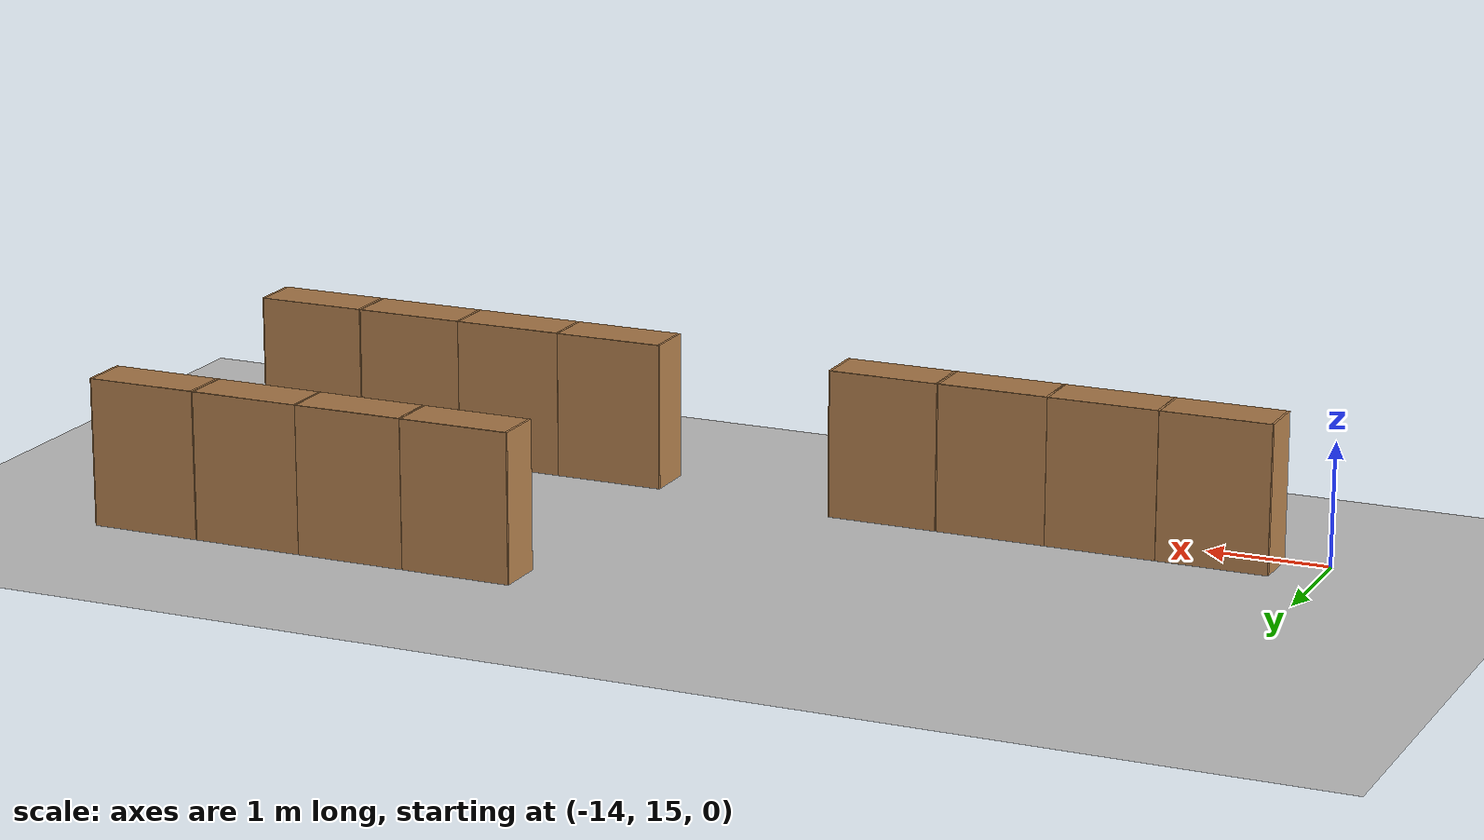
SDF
<sdf version="1.6">
 <world name="default">
  <model name="ground_plane">
   <static>1</static>
   <link name="link">
    <collision name="collision">
     <geometry><plane><normal>0 0 1</normal><size>100 100</size></plane></geometry>
     <surface><friction><ode><mu>100</mu><mu2>50</mu2></ode></friction></surface>
    </collision>
    <visual name="visual">
     <cast_shadows>0</cast_shadows>
     <geometry><plane><normal>0 0 1</normal><size>100 100</size></plane></geometry>
     <material>
      <script><uri>file://media/materials/scripts/gazebo.material</uri><name>Gazebo/Grey</name></script>
     </material>
    </visual>
   </link>
  </model>
  <model name="Bookself-4_clone_1">
   <model name="Bookself-3">
    <model name="bookshelf_0">
     <static>1</static>
     <link name="link">
      <inertial><mass>1</mass></inertial>
      <collision name="back">
       <pose>0 0.005 0.6 0 -0 0</pose>
       <geometry><box><size>0.9 0.01 1.2</size></box></geometry>
      </collision>
      <visual name="visual1">
       <pose>0 0.005 0.6 0 -0 0</pose>
       <geometry><box><size>0.9 0.01 1.2</size></box></geometry>
       <material>
        <script><uri>file://media/materials/scripts/gazebo.material</uri><name>Gazebo/Wood</name></script>
       </material>
      </visual>
      <collision name="left_side">
       <pose>0.45 -0.195 0.6 0 -0 0</pose>
       <geometry><box><size>0.02 0.4 1.2</size></box></geometry>
      </collision>
      <visual name="visual2">
       <pose>0.45 -0.195 0.6 0 -0 0</pose>
       <geometry><box><size>0.02 0.4 1.2</size></box></geometry>
       <material>
        <script><uri>file://media/materials/scripts/gazebo.material</uri><name>Gazebo/Wood</name></script>
       </material>
      </visual>
      <collision name="right_side">
       <pose>-0.45 -0.195 0.6 0 -0 0</pose>
       <geometry><box><size>0.02 0.4 1.2</size></box></geometry>
      </collision>
      <visual name="visual3">
       <pose>-0.45 -0.195 0.6 0 -0 0</pose>
       <geometry><box><size>0.02 0.4 1.2</size></box></geometry>
       <material>
        <script><uri>file://media/materials/scripts/gazebo.material</uri><name>Gazebo/Wood</name></script>
       </material>
      </visual>
      <collision name="bottom">
       <pose>0 -0.195 0.03 0 -0 0</pose>
       <geometry><box><size>0.88 0.4 0.06</size></box></geometry>
      </collision>
      <visual name="visual4">
       <pose>0 -0.195 0.03 0 -0 0</pose>
       <geometry><box><size>0.88 0.4 0.06</size></box></geometry>
       <material>
        <script><uri>file://media/materials/scripts/gazebo.material</uri><name>Gazebo/Wood</name></script>
       </material>
      </visual>
      <collision name="top">
       <pose>0 -0.195 1.19 0 -0 0</pose>
       <geometry><box><size>0.88 0.4 0.02</size></box></geometry>
      </collision>
      <visual name="visual5">
       <pose>0 -0.195 1.19 0 -0 0</pose>
       <geometry><box><size>0.88 0.4 0.02</size></box></geometry>
       <material>
        <script><uri>file://media/materials/scripts/gazebo.material</uri><name>Gazebo/Wood</name></script>
       </material>
      </visual>
      <collision name="low_shelf">
       <pose>0 -0.195 0.43 0 -0 0</pose>
       <geometry><box><size>0.88 0.4 0.02</size></box></geometry>
      </collision>
      <visual name="visual6">
       <pose>0 -0.195 0.43 0 -0 0</pose>
       <geometry><box><size>0.88 0.4 0.02</size></box></geometry>
       <material>
        <script><uri>file://media/materials/scripts/gazebo.material</uri><name>Gazebo/Wood</name></script>
       </material>
      </visual>
      <collision name="high_shelf">
       <pose>0 -0.195 0.8 0 -0 0</pose>
       <geometry><box><size>0.88 0.4 0.02</size></box></geometry>
      </collision>
      <visual name="visual7">
       <pose>0 -0.195 0.8 0 -0 0</pose>
       <geometry><box><size>0.88 0.4 0.02</size></box></geometry>
       <material>
        <script><uri>file://media/materials/scripts/gazebo.material</uri><name>Gazebo/Wood</name></script>
       </material>
      </visual>
     </link>
     <pose>-0.903039 0 0 0 -0 0</pose>
    </model>
    <model name="bookshelf_1">
     <static>1</static>
     <link name="link">
      <inertial><mass>1</mass></inertial>
      <collision name="back">
       <pose>0 0.005 0.6 0 -0 0</pose>
       <geometry><box><size>0.9 0.01 1.2</size></box></geometry>
      </collision>
      <visual name="visual1">
       <pose>0 0.005 0.6 0 -0 0</pose>
       <geometry><box><size>0.9 0.01 1.2</size></box></geometry>
       <material>
        <script><uri>file://media/materials/scripts/gazebo.material</uri><name>Gazebo/Wood</name></script>
       </material>
      </visual>
      <collision name="left_side">
       <pose>0.45 -0.195 0.6 0 -0 0</pose>
       <geometry><box><size>0.02 0.4 1.2</size></box></geometry>
      </collision>
      <visual name="visual2">
       <pose>0.45 -0.195 0.6 0 -0 0</pose>
       <geometry><box><size>0.02 0.4 1.2</size></box></geometry>
       <material>
        <script><uri>file://media/materials/scripts/gazebo.material</uri><name>Gazebo/Wood</name></script>
       </material>
      </visual>
      <collision name="right_side">
       <pose>-0.45 -0.195 0.6 0 -0 0</pose>
       <geometry><box><size>0.02 0.4 1.2</size></box></geometry>
      </collision>
      <visual name="visual3">
       <pose>-0.45 -0.195 0.6 0 -0 0</pose>
       <geometry><box><size>0.02 0.4 1.2</size></box></geometry>
       <material>
        <script><uri>file://media/materials/scripts/gazebo.material</uri><name>Gazebo/Wood</name></script>
       </material>
      </visual>
      <collision name="bottom">
       <pose>0 -0.195 0.03 0 -0 0</pose>
       <geometry><box><size>0.88 0.4 0.06</size></box></geometry>
      </collision>
      <visual name="visual4">
       <pose>0 -0.195 0.03 0 -0 0</pose>
       <geometry><box><size>0.88 0.4 0.06</size></box></geometry>
       <material>
        <script><uri>file://media/materials/scripts/gazebo.material</uri><name>Gazebo/Wood</name></script>
       </material>
      </visual>
      <collision name="top">
       <pose>0 -0.195 1.19 0 -0 0</pose>
       <geometry><box><size>0.88 0.4 0.02</size></box></geometry>
      </collision>
      <visual name="visual5">
       <pose>0 -0.195 1.19 0 -0 0</pose>
       <geometry><box><size>0.88 0.4 0.02</size></box></geometry>
       <material>
        <script><uri>file://media/materials/scripts/gazebo.material</uri><name>Gazebo/Wood</name></script>
       </material>
      </visual>
      <collision name="low_shelf">
       <pose>0 -0.195 0.43 0 -0 0</pose>
       <geometry><box><size>0.88 0.4 0.02</size></box></geometry>
      </collision>
      <visual name="visual6">
       <pose>0 -0.195 0.43 0 -0 0</pose>
       <geometry><box><size>0.88 0.4 0.02</size></box></geometry>
       <material>
        <script><uri>file://media/materials/scripts/gazebo.material</uri><name>Gazebo/Wood</name></script>
       </material>
      </visual>
      <collision name="high_shelf">
       <pose>0 -0.195 0.8 0 -0 0</pose>
       <geometry><box><size>0.88 0.4 0.02</size></box></geometry>
      </collision>
      <visual name="visual7">
       <pose>0 -0.195 0.8 0 -0 0</pose>
       <geometry><box><size>0.88 0.4 0.02</size></box></geometry>
       <material>
        <script><uri>file://media/materials/scripts/gazebo.material</uri><name>Gazebo/Wood</name></script>
       </material>
      </visual>
     </link>
     <pose>0.000535 0 0 0 -0 0</pose>
    </model>
    <model name="bookshelf_1_clone">
     <static>1</static>
     <link name="link">
      <inertial><mass>1</mass></inertial>
      <collision name="back">
       <pose>0 0.005 0.6 0 -0 0</pose>
       <geometry><box><size>0.9 0.01 1.2</size></box></geometry>
      </collision>
      <visual name="visual1">
       <pose>0 0.005 0.6 0 -0 0</pose>
       <geometry><box><size>0.9 0.01 1.2</size></box></geometry>
       <material>
        <script><uri>file://media/materials/scripts/gazebo.material</uri><name>Gazebo/Wood</name></script>
       </material>
      </visual>
      <collision name="left_side">
       <pose>0.45 -0.195 0.6 0 -0 0</pose>
       <geometry><box><size>0.02 0.4 1.2</size></box></geometry>
      </collision>
      <visual name="visual2">
       <pose>0.45 -0.195 0.6 0 -0 0</pose>
       <geometry><box><size>0.02 0.4 1.2</size></box></geometry>
       <material>
        <script><uri>file://media/materials/scripts/gazebo.material</uri><name>Gazebo/Wood</name></script>
       </material>
      </visual>
      <collision name="right_side">
       <pose>-0.45 -0.195 0.6 0 -0 0</pose>
       <geometry><box><size>0.02 0.4 1.2</size></box></geometry>
      </collision>
      <visual name="visual3">
       <pose>-0.45 -0.195 0.6 0 -0 0</pose>
       <geometry><box><size>0.02 0.4 1.2</size></box></geometry>
       <material>
        <script><uri>file://media/materials/scripts/gazebo.material</uri><name>Gazebo/Wood</name></script>
       </material>
      </visual>
      <collision name="bottom">
       <pose>0 -0.195 0.03 0 -0 0</pose>
       <geometry><box><size>0.88 0.4 0.06</size></box></geometry>
      </collision>
      <visual name="visual4">
       <pose>0 -0.195 0.03 0 -0 0</pose>
       <geometry><box><size>0.88 0.4 0.06</size></box></geometry>
       <material>
        <script><uri>file://media/materials/scripts/gazebo.material</uri><name>Gazebo/Wood</name></script>
       </material>
      </visual>
      <collision name="top">
       <pose>0 -0.195 1.19 0 -0 0</pose>
       <geometry><box><size>0.88 0.4 0.02</size></box></geometry>
      </collision>
      <visual name="visual5">
       <pose>0 -0.195 1.19 0 -0 0</pose>
       <geometry><box><size>0.88 0.4 0.02</size></box></geometry>
       <material>
        <script><uri>file://media/materials/scripts/gazebo.material</uri><name>Gazebo/Wood</name></script>
       </material>
      </visual>
      <collision name="low_shelf">
       <pose>0 -0.195 0.43 0 -0 0</pose>
       <geometry><box><size>0.88 0.4 0.02</size></box></geometry>
      </collision>
      <visual name="visual6">
       <pose>0 -0.195 0.43 0 -0 0</pose>
       <geometry><box><size>0.88 0.4 0.02</size></box></geometry>
       <material>
        <script><uri>file://media/materials/scripts/gazebo.material</uri><name>Gazebo/Wood</name></script>
       </material>
      </visual>
      <collision name="high_shelf">
       <pose>0 -0.195 0.8 0 -0 0</pose>
       <geometry><box><size>0.88 0.4 0.02</size></box></geometry>
      </collision>
      <visual name="visual7">
       <pose>0 -0.195 0.8 0 -0 0</pose>
       <geometry><box><size>0.88 0.4 0.02</size></box></geometry>
       <material>
        <script><uri>file://media/materials/scripts/gazebo.material</uri><name>Gazebo/Wood</name></script>
       </material>
      </visual>
     </link>
     <pose>0.902502 0 0 0 -0 0</pose>
    </model>
    <static>1</static>
    <pose>-0.906894 3e-05 0 0 -0 0</pose>
   </model>
   <model name="bookshelf">
    <static>1</static>
    <link name="link">
     <inertial><mass>1</mass></inertial>
     <collision name="back">
      <pose>0 0.005 0.6 0 -0 0</pose>
      <geometry><box><size>0.9 0.01 1.2</size></box></geometry>
     </collision>
     <visual name="visual1">
      <pose>0 0.005 0.6 0 -0 0</pose>
      <geometry><box><size>0.9 0.01 1.2</size></box></geometry>
      <material>
       <script><uri>file://media/materials/scripts/gazebo.material</uri><name>Gazebo/Wood</name></script>
      </material>
     </visual>
     <collision name="left_side">
      <pose>0.45 -0.195 0.6 0 -0 0</pose>
      <geometry><box><size>0.02 0.4 1.2</size></box></geometry>
     </collision>
     <visual name="visual2">
      <pose>0.45 -0.195 0.6 0 -0 0</pose>
      <geometry><box><size>0.02 0.4 1.2</size></box></geometry>
      <material>
       <script><uri>file://media/materials/scripts/gazebo.material</uri><name>Gazebo/Wood</name></script>
      </material>
     </visual>
     <collision name="right_side">
      <pose>-0.45 -0.195 0.6 0 -0 0</pose>
      <geometry><box><size>0.02 0.4 1.2</size></box></geometry>
     </collision>
     <visual name="visual3">
      <pose>-0.45 -0.195 0.6 0 -0 0</pose>
      <geometry><box><size>0.02 0.4 1.2</size></box></geometry>
      <material>
       <script><uri>file://media/materials/scripts/gazebo.material</uri><name>Gazebo/Wood</name></script>
      </material>
     </visual>
     <collision name="bottom">
      <pose>0 -0.195 0.03 0 -0 0</pose>
      <geometry><box><size>0.88 0.4 0.06</size></box></geometry>
     </collision>
     <visual name="visual4">
      <pose>0 -0.195 0.03 0 -0 0</pose>
      <geometry><box><size>0.88 0.4 0.06</size></box></geometry>
      <material>
       <script><uri>file://media/materials/scripts/gazebo.material</uri><name>Gazebo/Wood</name></script>
      </material>
     </visual>
     <collision name="top">
      <pose>0 -0.195 1.19 0 -0 0</pose>
      <geometry><box><size>0.88 0.4 0.02</size></box></geometry>
     </collision>
     <visual name="visual5">
      <pose>0 -0.195 1.19 0 -0 0</pose>
      <geometry><box><size>0.88 0.4 0.02</size></box></geometry>
      <material>
       <script><uri>file://media/materials/scripts/gazebo.material</uri><name>Gazebo/Wood</name></script>
      </material>
     </visual>
     <collision name="low_shelf">
      <pose>0 -0.195 0.43 0 -0 0</pose>
      <geometry><box><size>0.88 0.4 0.02</size></box></geometry>
     </collision>
     <visual name="visual6">
      <pose>0 -0.195 0.43 0 -0 0</pose>
      <geometry><box><size>0.88 0.4 0.02</size></box></geometry>
      <material>
       <script><uri>file://media/materials/scripts/gazebo.material</uri><name>Gazebo/Wood</name></script>
      </material>
     </visual>
     <collision name="high_shelf">
      <pose>0 -0.195 0.8 0 -0 0</pose>
      <geometry><box><size>0.88 0.4 0.02</size></box></geometry>
     </collision>
     <visual name="visual7">
      <pose>0 -0.195 0.8 0 -0 0</pose>
      <geometry><box><size>0.88 0.4 0.02</size></box></geometry>
      <material>
       <script><uri>file://media/materials/scripts/gazebo.material</uri><name>Gazebo/Wood</name></script>
      </material>
     </visual>
    </link>
    <pose>0.906808 3e-05 0 0 -0 0</pose>
   </model>
   <static>0</static>
   <pose>-6.1953 17.9569 0 0 -0 0</pose>
  </model>
  <model name="Bookself-4_clone_2">
   <model name="Bookself-3">
    <model name="bookshelf_0">
     <static>1</static>
     <link name="link">
      <inertial><mass>1</mass></inertial>
      <collision name="back">
       <pose>0 0.005 0.6 0 -0 0</pose>
       <geometry><box><size>0.9 0.01 1.2</size></box></geometry>
      </collision>
      <visual name="visual1">
       <pose>0 0.005 0.6 0 -0 0</pose>
       <geometry><box><size>0.9 0.01 1.2</size></box></geometry>
       <material>
        <script><uri>file://media/materials/scripts/gazebo.material</uri><name>Gazebo/Wood</name></script>
       </material>
      </visual>
      <collision name="left_side">
       <pose>0.45 -0.195 0.6 0 -0 0</pose>
       <geometry><box><size>0.02 0.4 1.2</size></box></geometry>
      </collision>
      <visual name="visual2">
       <pose>0.45 -0.195 0.6 0 -0 0</pose>
       <geometry><box><size>0.02 0.4 1.2</size></box></geometry>
       <material>
        <script><uri>file://media/materials/scripts/gazebo.material</uri><name>Gazebo/Wood</name></script>
       </material>
      </visual>
      <collision name="right_side">
       <pose>-0.45 -0.195 0.6 0 -0 0</pose>
       <geometry><box><size>0.02 0.4 1.2</size></box></geometry>
      </collision>
      <visual name="visual3">
       <pose>-0.45 -0.195 0.6 0 -0 0</pose>
       <geometry><box><size>0.02 0.4 1.2</size></box></geometry>
       <material>
        <script><uri>file://media/materials/scripts/gazebo.material</uri><name>Gazebo/Wood</name></script>
       </material>
      </visual>
      <collision name="bottom">
       <pose>0 -0.195 0.03 0 -0 0</pose>
       <geometry><box><size>0.88 0.4 0.06</size></box></geometry>
      </collision>
      <visual name="visual4">
       <pose>0 -0.195 0.03 0 -0 0</pose>
       <geometry><box><size>0.88 0.4 0.06</size></box></geometry>
       <material>
        <script><uri>file://media/materials/scripts/gazebo.material</uri><name>Gazebo/Wood</name></script>
       </material>
      </visual>
      <collision name="top">
       <pose>0 -0.195 1.19 0 -0 0</pose>
       <geometry><box><size>0.88 0.4 0.02</size></box></geometry>
      </collision>
      <visual name="visual5">
       <pose>0 -0.195 1.19 0 -0 0</pose>
       <geometry><box><size>0.88 0.4 0.02</size></box></geometry>
       <material>
        <script><uri>file://media/materials/scripts/gazebo.material</uri><name>Gazebo/Wood</name></script>
       </material>
      </visual>
      <collision name="low_shelf">
       <pose>0 -0.195 0.43 0 -0 0</pose>
       <geometry><box><size>0.88 0.4 0.02</size></box></geometry>
      </collision>
      <visual name="visual6">
       <pose>0 -0.195 0.43 0 -0 0</pose>
       <geometry><box><size>0.88 0.4 0.02</size></box></geometry>
       <material>
        <script><uri>file://media/materials/scripts/gazebo.material</uri><name>Gazebo/Wood</name></script>
       </material>
      </visual>
      <collision name="high_shelf">
       <pose>0 -0.195 0.8 0 -0 0</pose>
       <geometry><box><size>0.88 0.4 0.02</size></box></geometry>
      </collision>
      <visual name="visual7">
       <pose>0 -0.195 0.8 0 -0 0</pose>
       <geometry><box><size>0.88 0.4 0.02</size></box></geometry>
       <material>
        <script><uri>file://media/materials/scripts/gazebo.material</uri><name>Gazebo/Wood</name></script>
       </material>
      </visual>
     </link>
     <pose>-0.903039 0 0 0 -0 0</pose>
    </model>
    <model name="bookshelf_1">
     <static>1</static>
     <link name="link">
      <inertial><mass>1</mass></inertial>
      <collision name="back">
       <pose>0 0.005 0.6 0 -0 0</pose>
       <geometry><box><size>0.9 0.01 1.2</size></box></geometry>
      </collision>
      <visual name="visual1">
       <pose>0 0.005 0.6 0 -0 0</pose>
       <geometry><box><size>0.9 0.01 1.2</size></box></geometry>
       <material>
        <script><uri>file://media/materials/scripts/gazebo.material</uri><name>Gazebo/Wood</name></script>
       </material>
      </visual>
      <collision name="left_side">
       <pose>0.45 -0.195 0.6 0 -0 0</pose>
       <geometry><box><size>0.02 0.4 1.2</size></box></geometry>
      </collision>
      <visual name="visual2">
       <pose>0.45 -0.195 0.6 0 -0 0</pose>
       <geometry><box><size>0.02 0.4 1.2</size></box></geometry>
       <material>
        <script><uri>file://media/materials/scripts/gazebo.material</uri><name>Gazebo/Wood</name></script>
       </material>
      </visual>
      <collision name="right_side">
       <pose>-0.45 -0.195 0.6 0 -0 0</pose>
       <geometry><box><size>0.02 0.4 1.2</size></box></geometry>
      </collision>
      <visual name="visual3">
       <pose>-0.45 -0.195 0.6 0 -0 0</pose>
       <geometry><box><size>0.02 0.4 1.2</size></box></geometry>
       <material>
        <script><uri>file://media/materials/scripts/gazebo.material</uri><name>Gazebo/Wood</name></script>
       </material>
      </visual>
      <collision name="bottom">
       <pose>0 -0.195 0.03 0 -0 0</pose>
       <geometry><box><size>0.88 0.4 0.06</size></box></geometry>
      </collision>
      <visual name="visual4">
       <pose>0 -0.195 0.03 0 -0 0</pose>
       <geometry><box><size>0.88 0.4 0.06</size></box></geometry>
       <material>
        <script><uri>file://media/materials/scripts/gazebo.material</uri><name>Gazebo/Wood</name></script>
       </material>
      </visual>
      <collision name="top">
       <pose>0 -0.195 1.19 0 -0 0</pose>
       <geometry><box><size>0.88 0.4 0.02</size></box></geometry>
      </collision>
      <visual name="visual5">
       <pose>0 -0.195 1.19 0 -0 0</pose>
       <geometry><box><size>0.88 0.4 0.02</size></box></geometry>
       <material>
        <script><uri>file://media/materials/scripts/gazebo.material</uri><name>Gazebo/Wood</name></script>
       </material>
      </visual>
      <collision name="low_shelf">
       <pose>0 -0.195 0.43 0 -0 0</pose>
       <geometry><box><size>0.88 0.4 0.02</size></box></geometry>
      </collision>
      <visual name="visual6">
       <pose>0 -0.195 0.43 0 -0 0</pose>
       <geometry><box><size>0.88 0.4 0.02</size></box></geometry>
       <material>
        <script><uri>file://media/materials/scripts/gazebo.material</uri><name>Gazebo/Wood</name></script>
       </material>
      </visual>
      <collision name="high_shelf">
       <pose>0 -0.195 0.8 0 -0 0</pose>
       <geometry><box><size>0.88 0.4 0.02</size></box></geometry>
      </collision>
      <visual name="visual7">
       <pose>0 -0.195 0.8 0 -0 0</pose>
       <geometry><box><size>0.88 0.4 0.02</size></box></geometry>
       <material>
        <script><uri>file://media/materials/scripts/gazebo.material</uri><name>Gazebo/Wood</name></script>
       </material>
      </visual>
     </link>
     <pose>0.000535 0 0 0 -0 0</pose>
    </model>
    <model name="bookshelf_1_clone">
     <static>1</static>
     <link name="link">
      <inertial><mass>1</mass></inertial>
      <collision name="back">
       <pose>0 0.005 0.6 0 -0 0</pose>
       <geometry><box><size>0.9 0.01 1.2</size></box></geometry>
      </collision>
      <visual name="visual1">
       <pose>0 0.005 0.6 0 -0 0</pose>
       <geometry><box><size>0.9 0.01 1.2</size></box></geometry>
       <material>
        <script><uri>file://media/materials/scripts/gazebo.material</uri><name>Gazebo/Wood</name></script>
       </material>
      </visual>
      <collision name="left_side">
       <pose>0.45 -0.195 0.6 0 -0 0</pose>
       <geometry><box><size>0.02 0.4 1.2</size></box></geometry>
      </collision>
      <visual name="visual2">
       <pose>0.45 -0.195 0.6 0 -0 0</pose>
       <geometry><box><size>0.02 0.4 1.2</size></box></geometry>
       <material>
        <script><uri>file://media/materials/scripts/gazebo.material</uri><name>Gazebo/Wood</name></script>
       </material>
      </visual>
      <collision name="right_side">
       <pose>-0.45 -0.195 0.6 0 -0 0</pose>
       <geometry><box><size>0.02 0.4 1.2</size></box></geometry>
      </collision>
      <visual name="visual3">
       <pose>-0.45 -0.195 0.6 0 -0 0</pose>
       <geometry><box><size>0.02 0.4 1.2</size></box></geometry>
       <material>
        <script><uri>file://media/materials/scripts/gazebo.material</uri><name>Gazebo/Wood</name></script>
       </material>
      </visual>
      <collision name="bottom">
       <pose>0 -0.195 0.03 0 -0 0</pose>
       <geometry><box><size>0.88 0.4 0.06</size></box></geometry>
      </collision>
      <visual name="visual4">
       <pose>0 -0.195 0.03 0 -0 0</pose>
       <geometry><box><size>0.88 0.4 0.06</size></box></geometry>
       <material>
        <script><uri>file://media/materials/scripts/gazebo.material</uri><name>Gazebo/Wood</name></script>
       </material>
      </visual>
      <collision name="top">
       <pose>0 -0.195 1.19 0 -0 0</pose>
       <geometry><box><size>0.88 0.4 0.02</size></box></geometry>
      </collision>
      <visual name="visual5">
       <pose>0 -0.195 1.19 0 -0 0</pose>
       <geometry><box><size>0.88 0.4 0.02</size></box></geometry>
       <material>
        <script><uri>file://media/materials/scripts/gazebo.material</uri><name>Gazebo/Wood</name></script>
       </material>
      </visual>
      <collision name="low_shelf">
       <pose>0 -0.195 0.43 0 -0 0</pose>
       <geometry><box><size>0.88 0.4 0.02</size></box></geometry>
      </collision>
      <visual name="visual6">
       <pose>0 -0.195 0.43 0 -0 0</pose>
       <geometry><box><size>0.88 0.4 0.02</size></box></geometry>
       <material>
        <script><uri>file://media/materials/scripts/gazebo.material</uri><name>Gazebo/Wood</name></script>
       </material>
      </visual>
      <collision name="high_shelf">
       <pose>0 -0.195 0.8 0 -0 0</pose>
       <geometry><box><size>0.88 0.4 0.02</size></box></geometry>
      </collision>
      <visual name="visual7">
       <pose>0 -0.195 0.8 0 -0 0</pose>
       <geometry><box><size>0.88 0.4 0.02</size></box></geometry>
       <material>
        <script><uri>file://media/materials/scripts/gazebo.material</uri><name>Gazebo/Wood</name></script>
       </material>
      </visual>
     </link>
     <pose>0.902502 0 0 0 -0 0</pose>
    </model>
    <static>1</static>
    <pose>-0.906894 3e-05 0 0 -0 0</pose>
   </model>
   <model name="bookshelf">
    <static>1</static>
    <link name="link">
     <inertial><mass>1</mass></inertial>
     <collision name="back">
      <pose>0 0.005 0.6 0 -0 0</pose>
      <geometry><box><size>0.9 0.01 1.2</size></box></geometry>
     </collision>
     <visual name="visual1">
      <pose>0 0.005 0.6 0 -0 0</pose>
      <geometry><box><size>0.9 0.01 1.2</size></box></geometry>
      <material>
       <script><uri>file://media/materials/scripts/gazebo.material</uri><name>Gazebo/Wood</name></script>
      </material>
     </visual>
     <collision name="left_side">
      <pose>0.45 -0.195 0.6 0 -0 0</pose>
      <geometry><box><size>0.02 0.4 1.2</size></box></geometry>
     </collision>
     <visual name="visual2">
      <pose>0.45 -0.195 0.6 0 -0 0</pose>
      <geometry><box><size>0.02 0.4 1.2</size></box></geometry>
      <material>
       <script><uri>file://media/materials/scripts/gazebo.material</uri><name>Gazebo/Wood</name></script>
      </material>
     </visual>
     <collision name="right_side">
      <pose>-0.45 -0.195 0.6 0 -0 0</pose>
      <geometry><box><size>0.02 0.4 1.2</size></box></geometry>
     </collision>
     <visual name="visual3">
      <pose>-0.45 -0.195 0.6 0 -0 0</pose>
      <geometry><box><size>0.02 0.4 1.2</size></box></geometry>
      <material>
       <script><uri>file://media/materials/scripts/gazebo.material</uri><name>Gazebo/Wood</name></script>
      </material>
     </visual>
     <collision name="bottom">
      <pose>0 -0.195 0.03 0 -0 0</pose>
      <geometry><box><size>0.88 0.4 0.06</size></box></geometry>
     </collision>
     <visual name="visual4">
      <pose>0 -0.195 0.03 0 -0 0</pose>
      <geometry><box><size>0.88 0.4 0.06</size></box></geometry>
      <material>
       <script><uri>file://media/materials/scripts/gazebo.material</uri><name>Gazebo/Wood</name></script>
      </material>
     </visual>
     <collision name="top">
      <pose>0 -0.195 1.19 0 -0 0</pose>
      <geometry><box><size>0.88 0.4 0.02</size></box></geometry>
     </collision>
     <visual name="visual5">
      <pose>0 -0.195 1.19 0 -0 0</pose>
      <geometry><box><size>0.88 0.4 0.02</size></box></geometry>
      <material>
       <script><uri>file://media/materials/scripts/gazebo.material</uri><name>Gazebo/Wood</name></script>
      </material>
     </visual>
     <collision name="low_shelf">
      <pose>0 -0.195 0.43 0 -0 0</pose>
      <geometry><box><size>0.88 0.4 0.02</size></box></geometry>
     </collision>
     <visual name="visual6">
      <pose>0 -0.195 0.43 0 -0 0</pose>
      <geometry><box><size>0.88 0.4 0.02</size></box></geometry>
      <material>
       <script><uri>file://media/materials/scripts/gazebo.material</uri><name>Gazebo/Wood</name></script>
      </material>
     </visual>
     <collision name="high_shelf">
      <pose>0 -0.195 0.8 0 -0 0</pose>
      <geometry><box><size>0.88 0.4 0.02</size></box></geometry>
     </collision>
     <visual name="visual7">
      <pose>0 -0.195 0.8 0 -0 0</pose>
      <geometry><box><size>0.88 0.4 0.02</size></box></geometry>
      <material>
       <script><uri>file://media/materials/scripts/gazebo.material</uri><name>Gazebo/Wood</name></script>
      </material>
     </visual>
    </link>
    <pose>0.906808 3e-05 0 0 -0 0</pose>
   </model>
   <static>0</static>
   <pose>-6.1953 15.2524 0 0 -0 0</pose>
  </model>
  <model name="Bookself-4_clone_5">
   <model name="Bookself-3">
    <model name="bookshelf_0">
     <static>1</static>
     <link name="link">
      <inertial><mass>1</mass></inertial>
      <collision name="back">
       <pose>0 0.005 0.6 0 -0 0</pose>
       <geometry><box><size>0.9 0.01 1.2</size></box></geometry>
      </collision>
      <visual name="visual1">
       <pose>0 0.005 0.6 0 -0 0</pose>
       <geometry><box><size>0.9 0.01 1.2</size></box></geometry>
       <material>
        <script><uri>file://media/materials/scripts/gazebo.material</uri><name>Gazebo/Wood</name></script>
       </material>
      </visual>
      <collision name="left_side">
       <pose>0.45 -0.195 0.6 0 -0 0</pose>
       <geometry><box><size>0.02 0.4 1.2</size></box></geometry>
      </collision>
      <visual name="visual2">
       <pose>0.45 -0.195 0.6 0 -0 0</pose>
       <geometry><box><size>0.02 0.4 1.2</size></box></geometry>
       <material>
        <script><uri>file://media/materials/scripts/gazebo.material</uri><name>Gazebo/Wood</name></script>
       </material>
      </visual>
      <collision name="right_side">
       <pose>-0.45 -0.195 0.6 0 -0 0</pose>
       <geometry><box><size>0.02 0.4 1.2</size></box></geometry>
      </collision>
      <visual name="visual3">
       <pose>-0.45 -0.195 0.6 0 -0 0</pose>
       <geometry><box><size>0.02 0.4 1.2</size></box></geometry>
       <material>
        <script><uri>file://media/materials/scripts/gazebo.material</uri><name>Gazebo/Wood</name></script>
       </material>
      </visual>
      <collision name="bottom">
       <pose>0 -0.195 0.03 0 -0 0</pose>
       <geometry><box><size>0.88 0.4 0.06</size></box></geometry>
      </collision>
      <visual name="visual4">
       <pose>0 -0.195 0.03 0 -0 0</pose>
       <geometry><box><size>0.88 0.4 0.06</size></box></geometry>
       <material>
        <script><uri>file://media/materials/scripts/gazebo.material</uri><name>Gazebo/Wood</name></script>
       </material>
      </visual>
      <collision name="top">
       <pose>0 -0.195 1.19 0 -0 0</pose>
       <geometry><box><size>0.88 0.4 0.02</size></box></geometry>
      </collision>
      <visual name="visual5">
       <pose>0 -0.195 1.19 0 -0 0</pose>
       <geometry><box><size>0.88 0.4 0.02</size></box></geometry>
       <material>
        <script><uri>file://media/materials/scripts/gazebo.material</uri><name>Gazebo/Wood</name></script>
       </material>
      </visual>
      <collision name="low_shelf">
       <pose>0 -0.195 0.43 0 -0 0</pose>
       <geometry><box><size>0.88 0.4 0.02</size></box></geometry>
      </collision>
      <visual name="visual6">
       <pose>0 -0.195 0.43 0 -0 0</pose>
       <geometry><box><size>0.88 0.4 0.02</size></box></geometry>
       <material>
        <script><uri>file://media/materials/scripts/gazebo.material</uri><name>Gazebo/Wood</name></script>
       </material>
      </visual>
      <collision name="high_shelf">
       <pose>0 -0.195 0.8 0 -0 0</pose>
       <geometry><box><size>0.88 0.4 0.02</size></box></geometry>
      </collision>
      <visual name="visual7">
       <pose>0 -0.195 0.8 0 -0 0</pose>
       <geometry><box><size>0.88 0.4 0.02</size></box></geometry>
       <material>
        <script><uri>file://media/materials/scripts/gazebo.material</uri><name>Gazebo/Wood</name></script>
       </material>
      </visual>
     </link>
     <pose>-0.903039 0 0 0 -0 0</pose>
    </model>
    <model name="bookshelf_1">
     <static>1</static>
     <link name="link">
      <inertial><mass>1</mass></inertial>
      <collision name="back">
       <pose>0 0.005 0.6 0 -0 0</pose>
       <geometry><box><size>0.9 0.01 1.2</size></box></geometry>
      </collision>
      <visual name="visual1">
       <pose>0 0.005 0.6 0 -0 0</pose>
       <geometry><box><size>0.9 0.01 1.2</size></box></geometry>
       <material>
        <script><uri>file://media/materials/scripts/gazebo.material</uri><name>Gazebo/Wood</name></script>
       </material>
      </visual>
      <collision name="left_side">
       <pose>0.45 -0.195 0.6 0 -0 0</pose>
       <geometry><box><size>0.02 0.4 1.2</size></box></geometry>
      </collision>
      <visual name="visual2">
       <pose>0.45 -0.195 0.6 0 -0 0</pose>
       <geometry><box><size>0.02 0.4 1.2</size></box></geometry>
       <material>
        <script><uri>file://media/materials/scripts/gazebo.material</uri><name>Gazebo/Wood</name></script>
       </material>
      </visual>
      <collision name="right_side">
       <pose>-0.45 -0.195 0.6 0 -0 0</pose>
       <geometry><box><size>0.02 0.4 1.2</size></box></geometry>
      </collision>
      <visual name="visual3">
       <pose>-0.45 -0.195 0.6 0 -0 0</pose>
       <geometry><box><size>0.02 0.4 1.2</size></box></geometry>
       <material>
        <script><uri>file://media/materials/scripts/gazebo.material</uri><name>Gazebo/Wood</name></script>
       </material>
      </visual>
      <collision name="bottom">
       <pose>0 -0.195 0.03 0 -0 0</pose>
       <geometry><box><size>0.88 0.4 0.06</size></box></geometry>
      </collision>
      <visual name="visual4">
       <pose>0 -0.195 0.03 0 -0 0</pose>
       <geometry><box><size>0.88 0.4 0.06</size></box></geometry>
       <material>
        <script><uri>file://media/materials/scripts/gazebo.material</uri><name>Gazebo/Wood</name></script>
       </material>
      </visual>
      <collision name="top">
       <pose>0 -0.195 1.19 0 -0 0</pose>
       <geometry><box><size>0.88 0.4 0.02</size></box></geometry>
      </collision>
      <visual name="visual5">
       <pose>0 -0.195 1.19 0 -0 0</pose>
       <geometry><box><size>0.88 0.4 0.02</size></box></geometry>
       <material>
        <script><uri>file://media/materials/scripts/gazebo.material</uri><name>Gazebo/Wood</name></script>
       </material>
      </visual>
      <collision name="low_shelf">
       <pose>0 -0.195 0.43 0 -0 0</pose>
       <geometry><box><size>0.88 0.4 0.02</size></box></geometry>
      </collision>
      <visual name="visual6">
       <pose>0 -0.195 0.43 0 -0 0</pose>
       <geometry><box><size>0.88 0.4 0.02</size></box></geometry>
       <material>
        <script><uri>file://media/materials/scripts/gazebo.material</uri><name>Gazebo/Wood</name></script>
       </material>
      </visual>
      <collision name="high_shelf">
       <pose>0 -0.195 0.8 0 -0 0</pose>
       <geometry><box><size>0.88 0.4 0.02</size></box></geometry>
      </collision>
      <visual name="visual7">
       <pose>0 -0.195 0.8 0 -0 0</pose>
       <geometry><box><size>0.88 0.4 0.02</size></box></geometry>
       <material>
        <script><uri>file://media/materials/scripts/gazebo.material</uri><name>Gazebo/Wood</name></script>
       </material>
      </visual>
     </link>
     <pose>0.000535 0 0 0 -0 0</pose>
    </model>
    <model name="bookshelf_1_clone">
     <static>1</static>
     <link name="link">
      <inertial><mass>1</mass></inertial>
      <collision name="back">
       <pose>0 0.005 0.6 0 -0 0</pose>
       <geometry><box><size>0.9 0.01 1.2</size></box></geometry>
      </collision>
      <visual name="visual1">
       <pose>0 0.005 0.6 0 -0 0</pose>
       <geometry><box><size>0.9 0.01 1.2</size></box></geometry>
       <material>
        <script><uri>file://media/materials/scripts/gazebo.material</uri><name>Gazebo/Wood</name></script>
       </material>
      </visual>
      <collision name="left_side">
       <pose>0.45 -0.195 0.6 0 -0 0</pose>
       <geometry><box><size>0.02 0.4 1.2</size></box></geometry>
      </collision>
      <visual name="visual2">
       <pose>0.45 -0.195 0.6 0 -0 0</pose>
       <geometry><box><size>0.02 0.4 1.2</size></box></geometry>
       <material>
        <script><uri>file://media/materials/scripts/gazebo.material</uri><name>Gazebo/Wood</name></script>
       </material>
      </visual>
      <collision name="right_side">
       <pose>-0.45 -0.195 0.6 0 -0 0</pose>
       <geometry><box><size>0.02 0.4 1.2</size></box></geometry>
      </collision>
      <visual name="visual3">
       <pose>-0.45 -0.195 0.6 0 -0 0</pose>
       <geometry><box><size>0.02 0.4 1.2</size></box></geometry>
       <material>
        <script><uri>file://media/materials/scripts/gazebo.material</uri><name>Gazebo/Wood</name></script>
       </material>
      </visual>
      <collision name="bottom">
       <pose>0 -0.195 0.03 0 -0 0</pose>
       <geometry><box><size>0.88 0.4 0.06</size></box></geometry>
      </collision>
      <visual name="visual4">
       <pose>0 -0.195 0.03 0 -0 0</pose>
       <geometry><box><size>0.88 0.4 0.06</size></box></geometry>
       <material>
        <script><uri>file://media/materials/scripts/gazebo.material</uri><name>Gazebo/Wood</name></script>
       </material>
      </visual>
      <collision name="top">
       <pose>0 -0.195 1.19 0 -0 0</pose>
       <geometry><box><size>0.88 0.4 0.02</size></box></geometry>
      </collision>
      <visual name="visual5">
       <pose>0 -0.195 1.19 0 -0 0</pose>
       <geometry><box><size>0.88 0.4 0.02</size></box></geometry>
       <material>
        <script><uri>file://media/materials/scripts/gazebo.material</uri><name>Gazebo/Wood</name></script>
       </material>
      </visual>
      <collision name="low_shelf">
       <pose>0 -0.195 0.43 0 -0 0</pose>
       <geometry><box><size>0.88 0.4 0.02</size></box></geometry>
      </collision>
      <visual name="visual6">
       <pose>0 -0.195 0.43 0 -0 0</pose>
       <geometry><box><size>0.88 0.4 0.02</size></box></geometry>
       <material>
        <script><uri>file://media/materials/scripts/gazebo.material</uri><name>Gazebo/Wood</name></script>
       </material>
      </visual>
      <collision name="high_shelf">
       <pose>0 -0.195 0.8 0 -0 0</pose>
       <geometry><box><size>0.88 0.4 0.02</size></box></geometry>
      </collision>
      <visual name="visual7">
       <pose>0 -0.195 0.8 0 -0 0</pose>
       <geometry><box><size>0.88 0.4 0.02</size></box></geometry>
       <material>
        <script><uri>file://media/materials/scripts/gazebo.material</uri><name>Gazebo/Wood</name></script>
       </material>
      </visual>
     </link>
     <pose>0.902502 0 0 0 -0 0</pose>
    </model>
    <static>1</static>
    <pose>-0.906894 3e-05 0 0 -0 0</pose>
   </model>
   <model name="bookshelf">
    <static>1</static>
    <link name="link">
     <inertial><mass>1</mass></inertial>
     <collision name="back">
      <pose>0 0.005 0.6 0 -0 0</pose>
      <geometry><box><size>0.9 0.01 1.2</size></box></geometry>
     </collision>
     <visual name="visual1">
      <pose>0 0.005 0.6 0 -0 0</pose>
      <geometry><box><size>0.9 0.01 1.2</size></box></geometry>
      <material>
       <script><uri>file://media/materials/scripts/gazebo.material</uri><name>Gazebo/Wood</name></script>
      </material>
     </visual>
     <collision name="left_side">
      <pose>0.45 -0.195 0.6 0 -0 0</pose>
      <geometry><box><size>0.02 0.4 1.2</size></box></geometry>
     </collision>
     <visual name="visual2">
      <pose>0.45 -0.195 0.6 0 -0 0</pose>
      <geometry><box><size>0.02 0.4 1.2</size></box></geometry>
      <material>
       <script><uri>file://media/materials/scripts/gazebo.material</uri><name>Gazebo/Wood</name></script>
      </material>
     </visual>
     <collision name="right_side">
      <pose>-0.45 -0.195 0.6 0 -0 0</pose>
      <geometry><box><size>0.02 0.4 1.2</size></box></geometry>
     </collision>
     <visual name="visual3">
      <pose>-0.45 -0.195 0.6 0 -0 0</pose>
      <geometry><box><size>0.02 0.4 1.2</size></box></geometry>
      <material>
       <script><uri>file://media/materials/scripts/gazebo.material</uri><name>Gazebo/Wood</name></script>
      </material>
     </visual>
     <collision name="bottom">
      <pose>0 -0.195 0.03 0 -0 0</pose>
      <geometry><box><size>0.88 0.4 0.06</size></box></geometry>
     </collision>
     <visual name="visual4">
      <pose>0 -0.195 0.03 0 -0 0</pose>
      <geometry><box><size>0.88 0.4 0.06</size></box></geometry>
      <material>
       <script><uri>file://media/materials/scripts/gazebo.material</uri><name>Gazebo/Wood</name></script>
      </material>
     </visual>
     <collision name="top">
      <pose>0 -0.195 1.19 0 -0 0</pose>
      <geometry><box><size>0.88 0.4 0.02</size></box></geometry>
     </collision>
     <visual name="visual5">
      <pose>0 -0.195 1.19 0 -0 0</pose>
      <geometry><box><size>0.88 0.4 0.02</size></box></geometry>
      <material>
       <script><uri>file://media/materials/scripts/gazebo.material</uri><name>Gazebo/Wood</name></script>
      </material>
     </visual>
     <collision name="low_shelf">
      <pose>0 -0.195 0.43 0 -0 0</pose>
      <geometry><box><size>0.88 0.4 0.02</size></box></geometry>
     </collision>
     <visual name="visual6">
      <pose>0 -0.195 0.43 0 -0 0</pose>
      <geometry><box><size>0.88 0.4 0.02</size></box></geometry>
      <material>
       <script><uri>file://media/materials/scripts/gazebo.material</uri><name>Gazebo/Wood</name></script>
      </material>
     </visual>
     <collision name="high_shelf">
      <pose>0 -0.195 0.8 0 -0 0</pose>
      <geometry><box><size>0.88 0.4 0.02</size></box></geometry>
     </collision>
     <visual name="visual7">
      <pose>0 -0.195 0.8 0 -0 0</pose>
      <geometry><box><size>0.88 0.4 0.02</size></box></geometry>
      <material>
       <script><uri>file://media/materials/scripts/gazebo.material</uri><name>Gazebo/Wood</name></script>
      </material>
     </visual>
    </link>
    <pose>0.906808 3e-05 0 0 -0 0</pose>
   </model>
   <static>0</static>
   <pose>-11.3528 15.3782 0 0 -0 0</pose>
  </model>
 </world>
</sdf>
